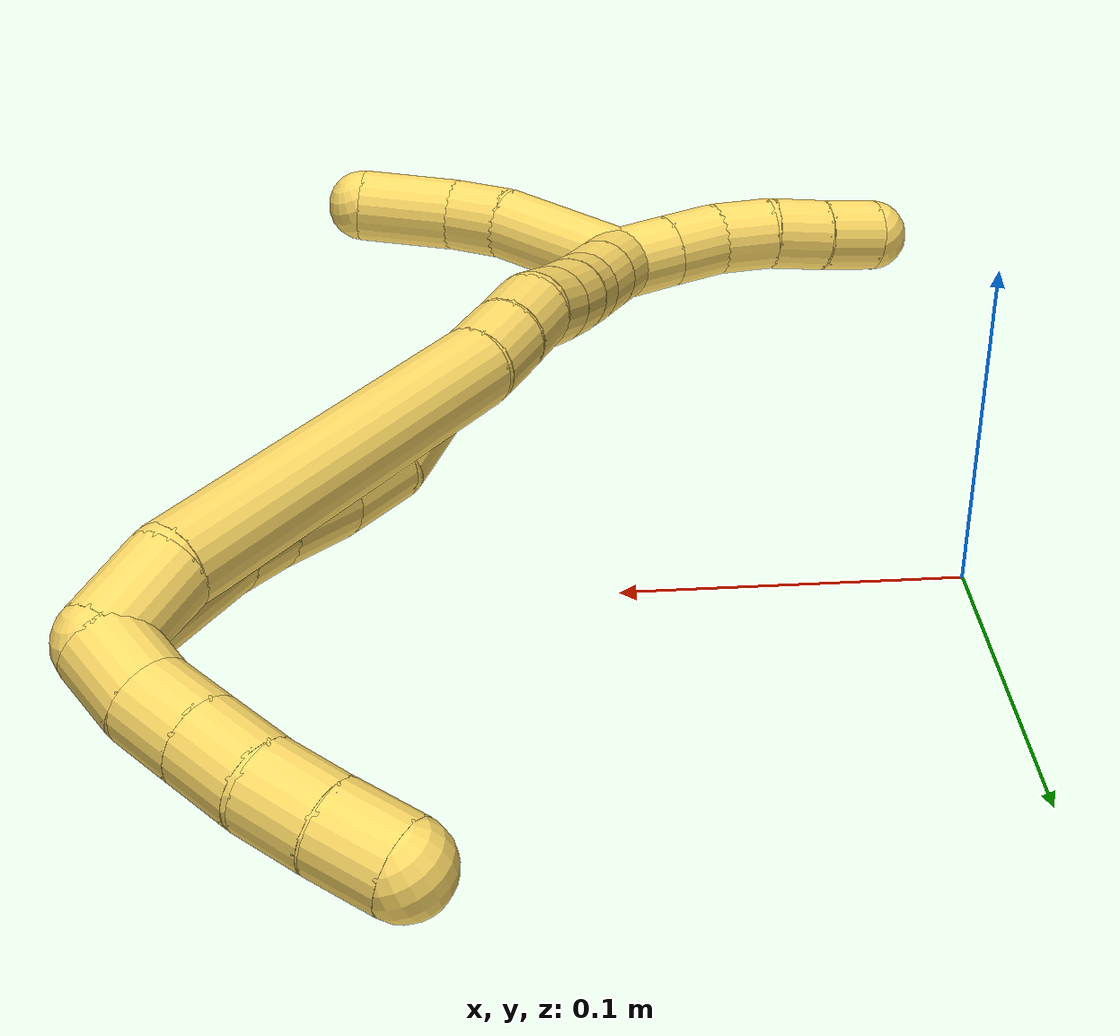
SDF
<sdf version="1.7">
 <world name="default">
  <model name="5">
   <static>0</static>
   <link name="5">
    <collision name="collision-cylinder-e_1_2_8">
     <pose>-0.020871 -0.013396 -0.00757 2.08517 -0.935506 -1.42706</pose>
     <geometry><cylinder><radius>0.0125</radius><length>0.051859</length></cylinder></geometry>
     <surface>
      <friction><ode><mu>1.16</mu><mu2>1.16</mu2><slip1>0</slip1><slip2>0</slip2></ode></friction>
      <contact><ode><kp>1e+06</kp><kd>1</kd><max_vel>0</max_vel><min_depth>0.001</min_depth></ode></contact>
     </surface>
    </collision>
    <visual name="visual-cylinder-e_1_2_8">
     <pose>-0.020871 -0.013396 -0.00757 2.08517 -0.935506 -1.42706</pose>
     <geometry><cylinder><radius>0.0125</radius><length>0.051859</length></cylinder></geometry>
     <material><ambient>1 0.858824 0.4 1</ambient></material>
    </visual>
    <collision name="collision-cylinder-e_2_8_9">
     <pose>-0.049772 -0.031785 -0.019059 2.23611 -0.901937 -1.56629</pose>
     <geometry><cylinder><radius>0.0125</radius><length>0.020472</length></cylinder></geometry>
     <surface>
      <friction><ode><mu>1.16</mu><mu2>1.16</mu2><slip1>0</slip1><slip2>0</slip2></ode></friction>
      <contact><ode><kp>1e+06</kp><kd>1</kd><max_vel>0</max_vel><min_depth>0.001</min_depth></ode></contact>
     </surface>
    </collision>
    <visual name="visual-cylinder-e_2_8_9">
     <pose>-0.049772 -0.031785 -0.019059 2.23611 -0.901937 -1.56629</pose>
     <geometry><cylinder><radius>0.0125</radius><length>0.020472</length></cylinder></geometry>
     <material><ambient>1 0.858824 0.4 1</ambient></material>
    </visual>
    <collision name="collision-cylinder-e_3_9_10">
     <pose>-0.069585 -0.043158 -0.029151 2.33992 -0.925093 -1.73272</pose>
     <geometry><cylinder><radius>0.0125</radius><length>0.029505</length></cylinder></geometry>
     <surface>
      <friction><ode><mu>1.16</mu><mu2>1.16</mu2><slip1>0</slip1><slip2>0</slip2></ode></friction>
      <contact><ode><kp>1e+06</kp><kd>1</kd><max_vel>0</max_vel><min_depth>0.001</min_depth></ode></contact>
     </surface>
    </collision>
    <visual name="visual-cylinder-e_3_9_10">
     <pose>-0.069585 -0.043158 -0.029151 2.33992 -0.925093 -1.73272</pose>
     <geometry><cylinder><radius>0.0125</radius><length>0.029505</length></cylinder></geometry>
     <material><ambient>1 0.858824 0.4 1</ambient></material>
    </visual>
    <collision name="collision-cylinder-e_4_10_11">
     <pose>-0.092248 -0.052778 -0.038281 2.30999 -1.18757 -1.98309</pose>
     <geometry><cylinder><radius>0.0125</radius><length>0.023463</length></cylinder></geometry>
     <surface>
      <friction><ode><mu>1.16</mu><mu2>1.16</mu2><slip1>0</slip1><slip2>0</slip2></ode></friction>
      <contact><ode><kp>1e+06</kp><kd>1</kd><max_vel>0</max_vel><min_depth>0.001</min_depth></ode></contact>
     </surface>
    </collision>
    <visual name="visual-cylinder-e_4_10_11">
     <pose>-0.092248 -0.052778 -0.038281 2.30999 -1.18757 -1.98309</pose>
     <geometry><cylinder><radius>0.0125</radius><length>0.023463</length></cylinder></geometry>
     <material><ambient>1 0.858824 0.4 1</ambient></material>
    </visual>
    <collision name="collision-cylinder-e_5_11_6">
     <pose>-0.114639 -0.060374 -0.040194 1.33598 -1.19982 -0.989765</pose>
     <geometry><cylinder><radius>0.0125</radius><length>0.0247</length></cylinder></geometry>
     <surface>
      <friction><ode><mu>1.16</mu><mu2>1.16</mu2><slip1>0</slip1><slip2>0</slip2></ode></friction>
      <contact><ode><kp>1e+06</kp><kd>1</kd><max_vel>0</max_vel><min_depth>0.001</min_depth></ode></contact>
     </surface>
    </collision>
    <visual name="visual-cylinder-e_5_11_6">
     <pose>-0.114639 -0.060374 -0.040194 1.33598 -1.19982 -0.989765</pose>
     <geometry><cylinder><radius>0.0125</radius><length>0.0247</length></cylinder></geometry>
     <material><ambient>1 0.858824 0.4 1</ambient></material>
    </visual>
    <collision name="collision-cylinder-e_1_2_12">
     <pose>0.000584 0.008449 -0.005318 -2.13257 0.058446 -0.105778</pose>
     <geometry><cylinder><radius>0.0125</radius><length>0.02</length></cylinder></geometry>
     <surface>
      <friction><ode><mu>1.16</mu><mu2>1.16</mu2><slip1>0</slip1><slip2>0</slip2></ode></friction>
      <contact><ode><kp>1e+06</kp><kd>1</kd><max_vel>0</max_vel><min_depth>0.001</min_depth></ode></contact>
     </surface>
    </collision>
    <visual name="visual-cylinder-e_1_2_12">
     <pose>0.000584 0.008449 -0.005318 -2.13257 0.058446 -0.105778</pose>
     <geometry><cylinder><radius>0.0125</radius><length>0.02</length></cylinder></geometry>
     <material><ambient>1 0.858824 0.4 1</ambient></material>
    </visual>
    <collision name="collision-cylinder-e_2_12_13">
     <pose>0.000145 0.026197 -0.014166 -1.93365 -0.102456 0.148348</pose>
     <geometry><cylinder><radius>0.0125</radius><length>0.02</length></cylinder></geometry>
     <surface>
      <friction><ode><mu>1.16</mu><mu2>1.16</mu2><slip1>0</slip1><slip2>0</slip2></ode></friction>
      <contact><ode><kp>1e+06</kp><kd>1</kd><max_vel>0</max_vel><min_depth>0.001</min_depth></ode></contact>
     </surface>
    </collision>
    <visual name="visual-cylinder-e_2_12_13">
     <pose>0.000145 0.026197 -0.014166 -1.93365 -0.102456 0.148348</pose>
     <geometry><cylinder><radius>0.0125</radius><length>0.02</length></cylinder></geometry>
     <material><ambient>1 0.858824 0.4 1</ambient></material>
    </visual>
    <collision name="collision-cylinder-e_3_13_14">
     <pose>-0.001953 0.044786 -0.021242 -1.93534 -0.10777 0.156308</pose>
     <geometry><cylinder><radius>0.0125</radius><length>0.02</length></cylinder></geometry>
     <surface>
      <friction><ode><mu>1.16</mu><mu2>1.16</mu2><slip1>0</slip1><slip2>0</slip2></ode></friction>
      <contact><ode><kp>1e+06</kp><kd>1</kd><max_vel>0</max_vel><min_depth>0.001</min_depth></ode></contact>
     </surface>
    </collision>
    <visual name="visual-cylinder-e_3_13_14">
     <pose>-0.001953 0.044786 -0.021242 -1.93534 -0.10777 0.156308</pose>
     <geometry><cylinder><radius>0.0125</radius><length>0.02</length></cylinder></geometry>
     <material><ambient>1 0.858824 0.4 1</ambient></material>
    </visual>
    <collision name="collision-cylinder-e_4_14_15">
     <pose>-0.005241 0.062843 -0.029053 -2.02366 -0.223064 0.354342</pose>
     <geometry><cylinder><radius>0.0125</radius><length>0.02</length></cylinder></geometry>
     <surface>
      <friction><ode><mu>1.16</mu><mu2>1.16</mu2><slip1>0</slip1><slip2>0</slip2></ode></friction>
      <contact><ode><kp>1e+06</kp><kd>1</kd><max_vel>0</max_vel><min_depth>0.001</min_depth></ode></contact>
     </surface>
    </collision>
    <visual name="visual-cylinder-e_4_14_15">
     <pose>-0.005241 0.062843 -0.029053 -2.02366 -0.223064 0.354342</pose>
     <geometry><cylinder><radius>0.0125</radius><length>0.02</length></cylinder></geometry>
     <material><ambient>1 0.858824 0.4 1</ambient></material>
    </visual>
    <collision name="collision-cylinder-e_5_15_5">
     <pose>-0.010138 0.080081 -0.037912 -2.06764 -0.2718 0.451554</pose>
     <geometry><cylinder><radius>0.0125</radius><length>0.02</length></cylinder></geometry>
     <surface>
      <friction><ode><mu>1.16</mu><mu2>1.16</mu2><slip1>0</slip1><slip2>0</slip2></ode></friction>
      <contact><ode><kp>1e+06</kp><kd>1</kd><max_vel>0</max_vel><min_depth>0.001</min_depth></ode></contact>
     </surface>
    </collision>
    <visual name="visual-cylinder-e_5_15_5">
     <pose>-0.010138 0.080081 -0.037912 -2.06764 -0.2718 0.451554</pose>
     <geometry><cylinder><radius>0.0125</radius><length>0.02</length></cylinder></geometry>
     <material><ambient>1 0.858824 0.4 1</ambient></material>
    </visual>
    <collision name="collision-cylinder-e_1_2_16">
     <pose>-0.012725 -0.004901 -0.000281 1.62807 -1.2026 -1.2566</pose>
     <geometry><cylinder><radius>0.0125</radius><length>0.027277</length></cylinder></geometry>
     <surface>
      <friction><ode><mu>1.16</mu><mu2>1.16</mu2><slip1>0</slip1><slip2>0</slip2></ode></friction>
      <contact><ode><kp>1e+06</kp><kd>1</kd><max_vel>0</max_vel><min_depth>0.001</min_depth></ode></contact>
     </surface>
    </collision>
    <visual name="visual-cylinder-e_1_2_16">
     <pose>-0.012725 -0.004901 -0.000281 1.62807 -1.2026 -1.2566</pose>
     <geometry><cylinder><radius>0.0125</radius><length>0.027277</length></cylinder></geometry>
     <material><ambient>1 0.858824 0.4 1</ambient></material>
    </visual>
    <collision name="collision-cylinder-e_2_16_17">
     <pose>-0.083391 -0.032808 -0.018057 2.22096 -1.1081 -1.79035</pose>
     <geometry><cylinder><radius>0.0125</radius><length>0.129502</length></cylinder></geometry>
     <surface>
      <friction><ode><mu>1.16</mu><mu2>1.16</mu2><slip1>0</slip1><slip2>0</slip2></ode></friction>
      <contact><ode><kp>1e+06</kp><kd>1</kd><max_vel>0</max_vel><min_depth>0.001</min_depth></ode></contact>
     </surface>
    </collision>
    <visual name="visual-cylinder-e_2_16_17">
     <pose>-0.083391 -0.032808 -0.018057 2.22096 -1.1081 -1.79035</pose>
     <geometry><cylinder><radius>0.0125</radius><length>0.129502</length></cylinder></geometry>
     <material><ambient>1 0.858824 0.4 1</ambient></material>
    </visual>
    <collision name="collision-cylinder-e_3_17_18">
     <pose>-0.149884 -0.060854 -0.037596 1.956 -1.00425 -1.36777</pose>
     <geometry><cylinder><radius>0.0125</radius><length>0.020267</length></cylinder></geometry>
     <surface>
      <friction><ode><mu>1.16</mu><mu2>1.16</mu2><slip1>0</slip1><slip2>0</slip2></ode></friction>
      <contact><ode><kp>1e+06</kp><kd>1</kd><max_vel>0</max_vel><min_depth>0.001</min_depth></ode></contact>
     </surface>
    </collision>
    <visual name="visual-cylinder-e_3_17_18">
     <pose>-0.149884 -0.060854 -0.037596 1.956 -1.00425 -1.36777</pose>
     <geometry><cylinder><radius>0.0125</radius><length>0.020267</length></cylinder></geometry>
     <material><ambient>1 0.858824 0.4 1</ambient></material>
    </visual>
    <collision name="collision-cylinder-e_4_18_19">
     <pose>-0.16659 -0.071756 -0.042095 1.96741 -0.908874 -1.2667</pose>
     <geometry><cylinder><radius>0.0125</radius><length>0.020679</length></cylinder></geometry>
     <surface>
      <friction><ode><mu>1.16</mu><mu2>1.16</mu2><slip1>0</slip1><slip2>0</slip2></ode></friction>
      <contact><ode><kp>1e+06</kp><kd>1</kd><max_vel>0</max_vel><min_depth>0.001</min_depth></ode></contact>
     </surface>
    </collision>
    <visual name="visual-cylinder-e_4_18_19">
     <pose>-0.16659 -0.071756 -0.042095 1.96741 -0.908874 -1.2667</pose>
     <geometry><cylinder><radius>0.0125</radius><length>0.020679</length></cylinder></geometry>
     <material><ambient>1 0.858824 0.4 1</ambient></material>
    </visual>
    <collision name="collision-cylinder-e_5_19_20">
     <pose>-0.181161 -0.084089 -0.049451 2.21905 -0.668746 -1.22009</pose>
     <geometry><cylinder><radius>0.0125</radius><length>0.020693</length></cylinder></geometry>
     <surface>
      <friction><ode><mu>1.16</mu><mu2>1.16</mu2><slip1>0</slip1><slip2>0</slip2></ode></friction>
      <contact><ode><kp>1e+06</kp><kd>1</kd><max_vel>0</max_vel><min_depth>0.001</min_depth></ode></contact>
     </surface>
    </collision>
    <visual name="visual-cylinder-e_5_19_20">
     <pose>-0.181161 -0.084089 -0.049451 2.21905 -0.668746 -1.22009</pose>
     <geometry><cylinder><radius>0.0125</radius><length>0.020693</length></cylinder></geometry>
     <material><ambient>1 0.858824 0.4 1</ambient></material>
    </visual>
    <collision name="collision-cylinder-e_6_20_21">
     <pose>-0.194169 -0.097164 -0.05885 2.16861 -0.689896 -1.1935</pose>
     <geometry><cylinder><radius>0.0125</radius><length>0.020717</length></cylinder></geometry>
     <surface>
      <friction><ode><mu>1.16</mu><mu2>1.16</mu2><slip1>0</slip1><slip2>0</slip2></ode></friction>
      <contact><ode><kp>1e+06</kp><kd>1</kd><max_vel>0</max_vel><min_depth>0.001</min_depth></ode></contact>
     </surface>
    </collision>
    <visual name="visual-cylinder-e_6_20_21">
     <pose>-0.194169 -0.097164 -0.05885 2.16861 -0.689896 -1.1935</pose>
     <geometry><cylinder><radius>0.0125</radius><length>0.020717</length></cylinder></geometry>
     <material><ambient>1 0.858824 0.4 1</ambient></material>
    </visual>
    <collision name="collision-cylinder-e_7_21_22">
     <pose>-0.206821 -0.110893 -0.067718 2.12105 -0.627236 -1.05032</pose>
     <geometry><cylinder><radius>0.0125</radius><length>0.020648</length></cylinder></geometry>
     <surface>
      <friction><ode><mu>1.16</mu><mu2>1.16</mu2><slip1>0</slip1><slip2>0</slip2></ode></friction>
      <contact><ode><kp>1e+06</kp><kd>1</kd><max_vel>0</max_vel><min_depth>0.001</min_depth></ode></contact>
     </surface>
    </collision>
    <visual name="visual-cylinder-e_7_21_22">
     <pose>-0.206821 -0.110893 -0.067718 2.12105 -0.627236 -1.05032</pose>
     <geometry><cylinder><radius>0.0125</radius><length>0.020648</length></cylinder></geometry>
     <material><ambient>1 0.858824 0.4 1</ambient></material>
    </visual>
    <collision name="collision-cylinder-e_8_22_23">
     <pose>-0.219998 -0.124087 -0.075726 2.11072 -0.788403 -1.26671</pose>
     <geometry><cylinder><radius>0.0125</radius><length>0.020072</length></cylinder></geometry>
     <surface>
      <friction><ode><mu>1.16</mu><mu2>1.16</mu2><slip1>0</slip1><slip2>0</slip2></ode></friction>
      <contact><ode><kp>1e+06</kp><kd>1</kd><max_vel>0</max_vel><min_depth>0.001</min_depth></ode></contact>
     </surface>
    </collision>
    <visual name="visual-cylinder-e_8_22_23">
     <pose>-0.219998 -0.124087 -0.075726 2.11072 -0.788403 -1.26671</pose>
     <geometry><cylinder><radius>0.0125</radius><length>0.020072</length></cylinder></geometry>
     <material><ambient>1 0.858824 0.4 1</ambient></material>
    </visual>
    <collision name="collision-cylinder-e_9_23_1">
     <pose>-0.234319 -0.136146 -0.083061 2.12392 -0.79679 -1.29279</pose>
     <geometry><cylinder><radius>0.0125</radius><length>0.020145</length></cylinder></geometry>
     <surface>
      <friction><ode><mu>1.16</mu><mu2>1.16</mu2><slip1>0</slip1><slip2>0</slip2></ode></friction>
      <contact><ode><kp>1e+06</kp><kd>1</kd><max_vel>0</max_vel><min_depth>0.001</min_depth></ode></contact>
     </surface>
    </collision>
    <visual name="visual-cylinder-e_9_23_1">
     <pose>-0.234319 -0.136146 -0.083061 2.12392 -0.79679 -1.29279</pose>
     <geometry><cylinder><radius>0.0125</radius><length>0.020145</length></cylinder></geometry>
     <material><ambient>1 0.858824 0.4 1</ambient></material>
    </visual>
    <collision name="collision-cylinder-e_1_1_24">
     <pose>-0.250816 -0.141065 -0.090289 -2.84667 -1.19301 2.71087</pose>
     <geometry><cylinder><radius>0.0125</radius><length>0.02</length></cylinder></geometry>
     <surface>
      <friction><ode><mu>1.16</mu><mu2>1.16</mu2><slip1>0</slip1><slip2>0</slip2></ode></friction>
      <contact><ode><kp>1e+06</kp><kd>1</kd><max_vel>0</max_vel><min_depth>0.001</min_depth></ode></contact>
     </surface>
    </collision>
    <visual name="visual-cylinder-e_1_1_24">
     <pose>-0.250816 -0.141065 -0.090289 -2.84667 -1.19301 2.71087</pose>
     <geometry><cylinder><radius>0.0125</radius><length>0.02</length></cylinder></geometry>
     <material><ambient>1 0.858824 0.4 1</ambient></material>
    </visual>
    <collision name="collision-cylinder-e_2_24_25">
     <pose>-0.269373 -0.138822 -0.097402 -2.82586 -1.18428 2.67683</pose>
     <geometry><cylinder><radius>0.0125</radius><length>0.02</length></cylinder></geometry>
     <surface>
      <friction><ode><mu>1.16</mu><mu2>1.16</mu2><slip1>0</slip1><slip2>0</slip2></ode></friction>
      <contact><ode><kp>1e+06</kp><kd>1</kd><max_vel>0</max_vel><min_depth>0.001</min_depth></ode></contact>
     </surface>
    </collision>
    <visual name="visual-cylinder-e_2_24_25">
     <pose>-0.269373 -0.138822 -0.097402 -2.82586 -1.18428 2.67683</pose>
     <geometry><cylinder><radius>0.0125</radius><length>0.02</length></cylinder></geometry>
     <material><ambient>1 0.858824 0.4 1</ambient></material>
    </visual>
    <collision name="collision-cylinder-e_3_25_26">
     <pose>-0.287053 -0.13394 -0.104906 -2.38347 -1.00047 1.8821</pose>
     <geometry><cylinder><radius>0.0125</radius><length>0.02</length></cylinder></geometry>
     <surface>
      <friction><ode><mu>1.16</mu><mu2>1.16</mu2><slip1>0</slip1><slip2>0</slip2></ode></friction>
      <contact><ode><kp>1e+06</kp><kd>1</kd><max_vel>0</max_vel><min_depth>0.001</min_depth></ode></contact>
     </surface>
    </collision>
    <visual name="visual-cylinder-e_3_25_26">
     <pose>-0.287053 -0.13394 -0.104906 -2.38347 -1.00047 1.8821</pose>
     <geometry><cylinder><radius>0.0125</radius><length>0.02</length></cylinder></geometry>
     <material><ambient>1 0.858824 0.4 1</ambient></material>
    </visual>
    <collision name="collision-cylinder-e_4_26_27">
     <pose>-0.303351 -0.127063 -0.114107 -2.60165 -0.907631 2.10949</pose>
     <geometry><cylinder><radius>0.0125</radius><length>0.02</length></cylinder></geometry>
     <surface>
      <friction><ode><mu>1.16</mu><mu2>1.16</mu2><slip1>0</slip1><slip2>0</slip2></ode></friction>
      <contact><ode><kp>1e+06</kp><kd>1</kd><max_vel>0</max_vel><min_depth>0.001</min_depth></ode></contact>
     </surface>
    </collision>
    <visual name="visual-cylinder-e_4_26_27">
     <pose>-0.303351 -0.127063 -0.114107 -2.60165 -0.907631 2.10949</pose>
     <geometry><cylinder><radius>0.0125</radius><length>0.02</length></cylinder></geometry>
     <material><ambient>1 0.858824 0.4 1</ambient></material>
    </visual>
    <collision name="collision-cylinder-e_5_27_4">
     <pose>-0.319374 -0.121222 -0.124539 -2.66257 -0.951419 2.2563</pose>
     <geometry><cylinder><radius>0.0125</radius><length>0.02</length></cylinder></geometry>
     <surface>
      <friction><ode><mu>1.16</mu><mu2>1.16</mu2><slip1>0</slip1><slip2>0</slip2></ode></friction>
      <contact><ode><kp>1e+06</kp><kd>1</kd><max_vel>0</max_vel><min_depth>0.001</min_depth></ode></contact>
     </surface>
    </collision>
    <visual name="visual-cylinder-e_5_27_4">
     <pose>-0.319374 -0.121222 -0.124539 -2.66257 -0.951419 2.2563</pose>
     <geometry><cylinder><radius>0.0125</radius><length>0.02</length></cylinder></geometry>
     <material><ambient>1 0.858824 0.4 1</ambient></material>
    </visual>
    <collision name="collision-cylinder-e_1_1_28">
     <pose>-0.234807 -0.162007 -0.077056 1.11647 0.294803 0.184918</pose>
     <geometry><cylinder><radius>0.0125</radius><length>0.04622</length></cylinder></geometry>
     <surface>
      <friction><ode><mu>1.16</mu><mu2>1.16</mu2><slip1>0</slip1><slip2>0</slip2></ode></friction>
      <contact><ode><kp>1e+06</kp><kd>1</kd><max_vel>0</max_vel><min_depth>0.001</min_depth></ode></contact>
     </surface>
    </collision>
    <visual name="visual-cylinder-e_1_1_28">
     <pose>-0.234807 -0.162007 -0.077056 1.11647 0.294803 0.184918</pose>
     <geometry><cylinder><radius>0.0125</radius><length>0.04622</length></cylinder></geometry>
     <material><ambient>1 0.858824 0.4 1</ambient></material>
    </visual>
    <collision name="collision-cylinder-e_2_28_29">
     <pose>-0.223725 -0.190397 -0.063921 1.18813 0.443864 0.302505</pose>
     <geometry><cylinder><radius>0.0125</radius><length>0.020342</length></cylinder></geometry>
     <surface>
      <friction><ode><mu>1.16</mu><mu2>1.16</mu2><slip1>0</slip1><slip2>0</slip2></ode></friction>
      <contact><ode><kp>1e+06</kp><kd>1</kd><max_vel>0</max_vel><min_depth>0.001</min_depth></ode></contact>
     </surface>
    </collision>
    <visual name="visual-cylinder-e_2_28_29">
     <pose>-0.223725 -0.190397 -0.063921 1.18813 0.443864 0.302505</pose>
     <geometry><cylinder><radius>0.0125</radius><length>0.020342</length></cylinder></geometry>
     <material><ambient>1 0.858824 0.4 1</ambient></material>
    </visual>
    <collision name="collision-cylinder-e_3_29_3">
     <pose>-0.208847 -0.209617 -0.053101 0.966301 0.679741 0.366834</pose>
     <geometry><cylinder><radius>0.0125</radius><length>0.033439</length></cylinder></geometry>
     <surface>
      <friction><ode><mu>1.16</mu><mu2>1.16</mu2><slip1>0</slip1><slip2>0</slip2></ode></friction>
      <contact><ode><kp>1e+06</kp><kd>1</kd><max_vel>0</max_vel><min_depth>0.001</min_depth></ode></contact>
     </surface>
    </collision>
    <visual name="visual-cylinder-e_3_29_3">
     <pose>-0.208847 -0.209617 -0.053101 0.966301 0.679741 0.366834</pose>
     <geometry><cylinder><radius>0.0125</radius><length>0.033439</length></cylinder></geometry>
     <material><ambient>1 0.858824 0.4 1</ambient></material>
    </visual>
    <collision name="collision-sphere-3">
     <pose>-0.198338 -0.220316 -0.045711 0 -0 0</pose>
     <geometry><sphere><radius>0.0125</radius></sphere></geometry>
     <surface>
      <friction><ode><mu>1.16</mu><mu2>1.16</mu2><slip1>0</slip1><slip2>0</slip2></ode></friction>
      <contact><ode><kp>1e+06</kp><kd>1</kd><max_vel>0</max_vel><min_depth>0.001</min_depth></ode></contact>
     </surface>
    </collision>
    <visual name="visual-sphere-3">
     <pose>-0.198338 -0.220316 -0.045711 0 -0 0</pose>
     <geometry><sphere><radius>0.0125</radius></sphere></geometry>
     <material><ambient>1 0.858824 0.4 1</ambient></material>
    </visual>
    <collision name="collision-sphere-29">
     <pose>-0.219357 -0.198918 -0.060492 0 -0 0</pose>
     <geometry><sphere><radius>0.0125</radius></sphere></geometry>
     <surface>
      <friction><ode><mu>1.16</mu><mu2>1.16</mu2><slip1>0</slip1><slip2>0</slip2></ode></friction>
      <contact><ode><kp>1e+06</kp><kd>1</kd><max_vel>0</max_vel><min_depth>0.001</min_depth></ode></contact>
     </surface>
    </collision>
    <visual name="visual-sphere-29">
     <pose>-0.219357 -0.198918 -0.060492 0 -0 0</pose>
     <geometry><sphere><radius>0.0125</radius></sphere></geometry>
     <material><ambient>1 0.858824 0.4 1</ambient></material>
    </visual>
    <collision name="collision-sphere-28">
     <pose>-0.228092 -0.181876 -0.067351 0 -0 0</pose>
     <geometry><sphere><radius>0.0125</radius></sphere></geometry>
     <surface>
      <friction><ode><mu>1.16</mu><mu2>1.16</mu2><slip1>0</slip1><slip2>0</slip2></ode></friction>
      <contact><ode><kp>1e+06</kp><kd>1</kd><max_vel>0</max_vel><min_depth>0.001</min_depth></ode></contact>
     </surface>
    </collision>
    <visual name="visual-sphere-28">
     <pose>-0.228092 -0.181876 -0.067351 0 -0 0</pose>
     <geometry><sphere><radius>0.0125</radius></sphere></geometry>
     <material><ambient>1 0.858824 0.4 1</ambient></material>
    </visual>
    <collision name="collision-sphere-4">
     <pose>-0.327516 -0.118546 -0.129691 0 -0 0</pose>
     <geometry><sphere><radius>0.0125</radius></sphere></geometry>
     <surface>
      <friction><ode><mu>1.16</mu><mu2>1.16</mu2><slip1>0</slip1><slip2>0</slip2></ode></friction>
      <contact><ode><kp>1e+06</kp><kd>1</kd><max_vel>0</max_vel><min_depth>0.001</min_depth></ode></contact>
     </surface>
    </collision>
    <visual name="visual-sphere-4">
     <pose>-0.327516 -0.118546 -0.129691 0 -0 0</pose>
     <geometry><sphere><radius>0.0125</radius></sphere></geometry>
     <material><ambient>1 0.858824 0.4 1</ambient></material>
    </visual>
    <collision name="collision-sphere-27">
     <pose>-0.311231 -0.123898 -0.119387 0 -0 0</pose>
     <geometry><sphere><radius>0.0125</radius></sphere></geometry>
     <surface>
      <friction><ode><mu>1.16</mu><mu2>1.16</mu2><slip1>0</slip1><slip2>0</slip2></ode></friction>
      <contact><ode><kp>1e+06</kp><kd>1</kd><max_vel>0</max_vel><min_depth>0.001</min_depth></ode></contact>
     </surface>
    </collision>
    <visual name="visual-sphere-27">
     <pose>-0.311231 -0.123898 -0.119387 0 -0 0</pose>
     <geometry><sphere><radius>0.0125</radius></sphere></geometry>
     <material><ambient>1 0.858824 0.4 1</ambient></material>
    </visual>
    <collision name="collision-sphere-26">
     <pose>-0.29547 -0.130227 -0.108826 0 -0 0</pose>
     <geometry><sphere><radius>0.0125</radius></sphere></geometry>
     <surface>
      <friction><ode><mu>1.16</mu><mu2>1.16</mu2><slip1>0</slip1><slip2>0</slip2></ode></friction>
      <contact><ode><kp>1e+06</kp><kd>1</kd><max_vel>0</max_vel><min_depth>0.001</min_depth></ode></contact>
     </surface>
    </collision>
    <visual name="visual-sphere-26">
     <pose>-0.29547 -0.130227 -0.108826 0 -0 0</pose>
     <geometry><sphere><radius>0.0125</radius></sphere></geometry>
     <material><ambient>1 0.858824 0.4 1</ambient></material>
    </visual>
    <collision name="collision-sphere-25">
     <pose>-0.278636 -0.137652 -0.100985 0 -0 0</pose>
     <geometry><sphere><radius>0.0125</radius></sphere></geometry>
     <surface>
      <friction><ode><mu>1.16</mu><mu2>1.16</mu2><slip1>0</slip1><slip2>0</slip2></ode></friction>
      <contact><ode><kp>1e+06</kp><kd>1</kd><max_vel>0</max_vel><min_depth>0.001</min_depth></ode></contact>
     </surface>
    </collision>
    <visual name="visual-sphere-25">
     <pose>-0.278636 -0.137652 -0.100985 0 -0 0</pose>
     <geometry><sphere><radius>0.0125</radius></sphere></geometry>
     <material><ambient>1 0.858824 0.4 1</ambient></material>
    </visual>
    <collision name="collision-sphere-24">
     <pose>-0.260111 -0.139993 -0.093819 0 -0 0</pose>
     <geometry><sphere><radius>0.0125</radius></sphere></geometry>
     <surface>
      <friction><ode><mu>1.16</mu><mu2>1.16</mu2><slip1>0</slip1><slip2>0</slip2></ode></friction>
      <contact><ode><kp>1e+06</kp><kd>1</kd><max_vel>0</max_vel><min_depth>0.001</min_depth></ode></contact>
     </surface>
    </collision>
    <visual name="visual-sphere-24">
     <pose>-0.260111 -0.139993 -0.093819 0 -0 0</pose>
     <geometry><sphere><radius>0.0125</radius></sphere></geometry>
     <material><ambient>1 0.858824 0.4 1</ambient></material>
    </visual>
    <collision name="collision-sphere-1">
     <pose>-0.241521 -0.142137 -0.08676 0 -0 0</pose>
     <geometry><sphere><radius>0.0125</radius></sphere></geometry>
     <surface>
      <friction><ode><mu>1.16</mu><mu2>1.16</mu2><slip1>0</slip1><slip2>0</slip2></ode></friction>
      <contact><ode><kp>1e+06</kp><kd>1</kd><max_vel>0</max_vel><min_depth>0.001</min_depth></ode></contact>
     </surface>
    </collision>
    <visual name="visual-sphere-1">
     <pose>-0.241521 -0.142137 -0.08676 0 -0 0</pose>
     <geometry><sphere><radius>0.0125</radius></sphere></geometry>
     <material><ambient>1 0.858824 0.4 1</ambient></material>
    </visual>
    <collision name="collision-sphere-23">
     <pose>-0.227116 -0.130156 -0.079363 0 -0 0</pose>
     <geometry><sphere><radius>0.0125</radius></sphere></geometry>
     <surface>
      <friction><ode><mu>1.16</mu><mu2>1.16</mu2><slip1>0</slip1><slip2>0</slip2></ode></friction>
      <contact><ode><kp>1e+06</kp><kd>1</kd><max_vel>0</max_vel><min_depth>0.001</min_depth></ode></contact>
     </surface>
    </collision>
    <visual name="visual-sphere-23">
     <pose>-0.227116 -0.130156 -0.079363 0 -0 0</pose>
     <geometry><sphere><radius>0.0125</radius></sphere></geometry>
     <material><ambient>1 0.858824 0.4 1</ambient></material>
    </visual>
    <collision name="collision-sphere-22">
     <pose>-0.21288 -0.118018 -0.072088 0 -0 0</pose>
     <geometry><sphere><radius>0.0125</radius></sphere></geometry>
     <surface>
      <friction><ode><mu>1.16</mu><mu2>1.16</mu2><slip1>0</slip1><slip2>0</slip2></ode></friction>
      <contact><ode><kp>1e+06</kp><kd>1</kd><max_vel>0</max_vel><min_depth>0.001</min_depth></ode></contact>
     </surface>
    </collision>
    <visual name="visual-sphere-22">
     <pose>-0.21288 -0.118018 -0.072088 0 -0 0</pose>
     <geometry><sphere><radius>0.0125</radius></sphere></geometry>
     <material><ambient>1 0.858824 0.4 1</ambient></material>
    </visual>
    <collision name="collision-sphere-21">
     <pose>-0.200762 -0.103768 -0.063347 0 -0 0</pose>
     <geometry><sphere><radius>0.0125</radius></sphere></geometry>
     <surface>
      <friction><ode><mu>1.16</mu><mu2>1.16</mu2><slip1>0</slip1><slip2>0</slip2></ode></friction>
      <contact><ode><kp>1e+06</kp><kd>1</kd><max_vel>0</max_vel><min_depth>0.001</min_depth></ode></contact>
     </surface>
    </collision>
    <visual name="visual-sphere-21">
     <pose>-0.200762 -0.103768 -0.063347 0 -0 0</pose>
     <geometry><sphere><radius>0.0125</radius></sphere></geometry>
     <material><ambient>1 0.858824 0.4 1</ambient></material>
    </visual>
    <collision name="collision-sphere-6">
     <pose>-0.126149 -0.064729 -0.039153 0 -0 0</pose>
     <geometry><sphere><radius>0.0125</radius></sphere></geometry>
     <surface>
      <friction><ode><mu>1.16</mu><mu2>1.16</mu2><slip1>0</slip1><slip2>0</slip2></ode></friction>
      <contact><ode><kp>1e+06</kp><kd>1</kd><max_vel>0</max_vel><min_depth>0.001</min_depth></ode></contact>
     </surface>
    </collision>
    <visual name="visual-sphere-6">
     <pose>-0.126149 -0.064729 -0.039153 0 -0 0</pose>
     <geometry><sphere><radius>0.0125</radius></sphere></geometry>
     <material><ambient>1 0.858824 0.4 1</ambient></material>
    </visual>
    <collision name="collision-sphere-11">
     <pose>-0.103129 -0.05602 -0.041236 0 -0 0</pose>
     <geometry><sphere><radius>0.0125</radius></sphere></geometry>
     <surface>
      <friction><ode><mu>1.16</mu><mu2>1.16</mu2><slip1>0</slip1><slip2>0</slip2></ode></friction>
      <contact><ode><kp>1e+06</kp><kd>1</kd><max_vel>0</max_vel><min_depth>0.001</min_depth></ode></contact>
     </surface>
    </collision>
    <visual name="visual-sphere-11">
     <pose>-0.103129 -0.05602 -0.041236 0 -0 0</pose>
     <geometry><sphere><radius>0.0125</radius></sphere></geometry>
     <material><ambient>1 0.858824 0.4 1</ambient></material>
    </visual>
    <collision name="collision-sphere-10">
     <pose>-0.081368 -0.049536 -0.035326 0 -0 0</pose>
     <geometry><sphere><radius>0.0125</radius></sphere></geometry>
     <surface>
      <friction><ode><mu>1.16</mu><mu2>1.16</mu2><slip1>0</slip1><slip2>0</slip2></ode></friction>
      <contact><ode><kp>1e+06</kp><kd>1</kd><max_vel>0</max_vel><min_depth>0.001</min_depth></ode></contact>
     </surface>
    </collision>
    <visual name="visual-sphere-10">
     <pose>-0.081368 -0.049536 -0.035326 0 -0 0</pose>
     <geometry><sphere><radius>0.0125</radius></sphere></geometry>
     <material><ambient>1 0.858824 0.4 1</ambient></material>
    </visual>
    <collision name="collision-sphere-9">
     <pose>-0.057803 -0.036779 -0.022977 0 -0 0</pose>
     <geometry><sphere><radius>0.0125</radius></sphere></geometry>
     <surface>
      <friction><ode><mu>1.16</mu><mu2>1.16</mu2><slip1>0</slip1><slip2>0</slip2></ode></friction>
      <contact><ode><kp>1e+06</kp><kd>1</kd><max_vel>0</max_vel><min_depth>0.001</min_depth></ode></contact>
     </surface>
    </collision>
    <visual name="visual-sphere-9">
     <pose>-0.057803 -0.036779 -0.022977 0 -0 0</pose>
     <geometry><sphere><radius>0.0125</radius></sphere></geometry>
     <material><ambient>1 0.858824 0.4 1</ambient></material>
    </visual>
    <collision name="collision-sphere-2">
     <geometry><sphere><radius>0.0125</radius></sphere></geometry>
     <surface>
      <friction><ode><mu>1.16</mu><mu2>1.16</mu2><slip1>0</slip1><slip2>0</slip2></ode></friction>
      <contact><ode><kp>1e+06</kp><kd>1</kd><max_vel>0</max_vel><min_depth>0.001</min_depth></ode></contact>
     </surface>
    </collision>
    <visual name="visual-sphere-2">
     <geometry><sphere><radius>0.0125</radius></sphere></geometry>
     <material><ambient>1 0.858824 0.4 1</ambient></material>
    </visual>
    <collision name="collision-sphere-19">
     <pose>-0.174746 -0.077618 -0.04455 0 -0 0</pose>
     <geometry><sphere><radius>0.0125</radius></sphere></geometry>
     <surface>
      <friction><ode><mu>1.16</mu><mu2>1.16</mu2><slip1>0</slip1><slip2>0</slip2></ode></friction>
      <contact><ode><kp>1e+06</kp><kd>1</kd><max_vel>0</max_vel><min_depth>0.001</min_depth></ode></contact>
     </surface>
    </collision>
    <visual name="visual-sphere-19">
     <pose>-0.174746 -0.077618 -0.04455 0 -0 0</pose>
     <geometry><sphere><radius>0.0125</radius></sphere></geometry>
     <material><ambient>1 0.858824 0.4 1</ambient></material>
    </visual>
    <collision name="collision-sphere-8">
     <pose>-0.041742 -0.026792 -0.01514 0 -0 0</pose>
     <geometry><sphere><radius>0.0125</radius></sphere></geometry>
     <surface>
      <friction><ode><mu>1.16</mu><mu2>1.16</mu2><slip1>0</slip1><slip2>0</slip2></ode></friction>
      <contact><ode><kp>1e+06</kp><kd>1</kd><max_vel>0</max_vel><min_depth>0.001</min_depth></ode></contact>
     </surface>
    </collision>
    <visual name="visual-sphere-8">
     <pose>-0.041742 -0.026792 -0.01514 0 -0 0</pose>
     <geometry><sphere><radius>0.0125</radius></sphere></geometry>
     <material><ambient>1 0.858824 0.4 1</ambient></material>
    </visual>
    <collision name="collision-sphere-12">
     <pose>0.001168 0.016897 -0.010636 0 -0 0</pose>
     <geometry><sphere><radius>0.0125</radius></sphere></geometry>
     <surface>
      <friction><ode><mu>1.16</mu><mu2>1.16</mu2><slip1>0</slip1><slip2>0</slip2></ode></friction>
      <contact><ode><kp>1e+06</kp><kd>1</kd><max_vel>0</max_vel><min_depth>0.001</min_depth></ode></contact>
     </surface>
    </collision>
    <visual name="visual-sphere-12">
     <pose>0.001168 0.016897 -0.010636 0 -0 0</pose>
     <geometry><sphere><radius>0.0125</radius></sphere></geometry>
     <material><ambient>1 0.858824 0.4 1</ambient></material>
    </visual>
    <collision name="collision-sphere-13">
     <pose>-0.000877 0.035497 -0.017697 0 -0 0</pose>
     <geometry><sphere><radius>0.0125</radius></sphere></geometry>
     <surface>
      <friction><ode><mu>1.16</mu><mu2>1.16</mu2><slip1>0</slip1><slip2>0</slip2></ode></friction>
      <contact><ode><kp>1e+06</kp><kd>1</kd><max_vel>0</max_vel><min_depth>0.001</min_depth></ode></contact>
     </surface>
    </collision>
    <visual name="visual-sphere-13">
     <pose>-0.000877 0.035497 -0.017697 0 -0 0</pose>
     <geometry><sphere><radius>0.0125</radius></sphere></geometry>
     <material><ambient>1 0.858824 0.4 1</ambient></material>
    </visual>
    <collision name="collision-sphere-14">
     <pose>-0.003029 0.054074 -0.024786 0 -0 0</pose>
     <geometry><sphere><radius>0.0125</radius></sphere></geometry>
     <surface>
      <friction><ode><mu>1.16</mu><mu2>1.16</mu2><slip1>0</slip1><slip2>0</slip2></ode></friction>
      <contact><ode><kp>1e+06</kp><kd>1</kd><max_vel>0</max_vel><min_depth>0.001</min_depth></ode></contact>
     </surface>
    </collision>
    <visual name="visual-sphere-14">
     <pose>-0.003029 0.054074 -0.024786 0 -0 0</pose>
     <geometry><sphere><radius>0.0125</radius></sphere></geometry>
     <material><ambient>1 0.858824 0.4 1</ambient></material>
    </visual>
    <collision name="collision-sphere-15">
     <pose>-0.007453 0.071613 -0.03332 0 -0 0</pose>
     <geometry><sphere><radius>0.0125</radius></sphere></geometry>
     <surface>
      <friction><ode><mu>1.16</mu><mu2>1.16</mu2><slip1>0</slip1><slip2>0</slip2></ode></friction>
      <contact><ode><kp>1e+06</kp><kd>1</kd><max_vel>0</max_vel><min_depth>0.001</min_depth></ode></contact>
     </surface>
    </collision>
    <visual name="visual-sphere-15">
     <pose>-0.007453 0.071613 -0.03332 0 -0 0</pose>
     <geometry><sphere><radius>0.0125</radius></sphere></geometry>
     <material><ambient>1 0.858824 0.4 1</ambient></material>
    </visual>
    <collision name="collision-sphere-5">
     <pose>-0.012822 0.088549 -0.042504 0 -0 0</pose>
     <geometry><sphere><radius>0.0125</radius></sphere></geometry>
     <surface>
      <friction><ode><mu>1.16</mu><mu2>1.16</mu2><slip1>0</slip1><slip2>0</slip2></ode></friction>
      <contact><ode><kp>1e+06</kp><kd>1</kd><max_vel>0</max_vel><min_depth>0.001</min_depth></ode></contact>
     </surface>
    </collision>
    <visual name="visual-sphere-5">
     <pose>-0.012822 0.088549 -0.042504 0 -0 0</pose>
     <geometry><sphere><radius>0.0125</radius></sphere></geometry>
     <material><ambient>1 0.858824 0.4 1</ambient></material>
    </visual>
    <collision name="collision-sphere-16">
     <pose>-0.025449 -0.009802 -0.000562 0 -0 0</pose>
     <geometry><sphere><radius>0.0125</radius></sphere></geometry>
     <surface>
      <friction><ode><mu>1.16</mu><mu2>1.16</mu2><slip1>0</slip1><slip2>0</slip2></ode></friction>
      <contact><ode><kp>1e+06</kp><kd>1</kd><max_vel>0</max_vel><min_depth>0.001</min_depth></ode></contact>
     </surface>
    </collision>
    <visual name="visual-sphere-16">
     <pose>-0.025449 -0.009802 -0.000562 0 -0 0</pose>
     <geometry><sphere><radius>0.0125</radius></sphere></geometry>
     <material><ambient>1 0.858824 0.4 1</ambient></material>
    </visual>
    <collision name="collision-sphere-17">
     <pose>-0.141334 -0.055814 -0.035553 0 -0 0</pose>
     <geometry><sphere><radius>0.0125</radius></sphere></geometry>
     <surface>
      <friction><ode><mu>1.16</mu><mu2>1.16</mu2><slip1>0</slip1><slip2>0</slip2></ode></friction>
      <contact><ode><kp>1e+06</kp><kd>1</kd><max_vel>0</max_vel><min_depth>0.001</min_depth></ode></contact>
     </surface>
    </collision>
    <visual name="visual-sphere-17">
     <pose>-0.141334 -0.055814 -0.035553 0 -0 0</pose>
     <geometry><sphere><radius>0.0125</radius></sphere></geometry>
     <material><ambient>1 0.858824 0.4 1</ambient></material>
    </visual>
    <collision name="collision-sphere-18">
     <pose>-0.158434 -0.065894 -0.03964 0 -0 0</pose>
     <geometry><sphere><radius>0.0125</radius></sphere></geometry>
     <surface>
      <friction><ode><mu>1.16</mu><mu2>1.16</mu2><slip1>0</slip1><slip2>0</slip2></ode></friction>
      <contact><ode><kp>1e+06</kp><kd>1</kd><max_vel>0</max_vel><min_depth>0.001</min_depth></ode></contact>
     </surface>
    </collision>
    <visual name="visual-sphere-18">
     <pose>-0.158434 -0.065894 -0.03964 0 -0 0</pose>
     <geometry><sphere><radius>0.0125</radius></sphere></geometry>
     <material><ambient>1 0.858824 0.4 1</ambient></material>
    </visual>
    <collision name="collision-sphere-20">
     <pose>-0.187576 -0.09056 -0.054353 0 -0 0</pose>
     <geometry><sphere><radius>0.0125</radius></sphere></geometry>
     <surface>
      <friction><ode><mu>1.16</mu><mu2>1.16</mu2><slip1>0</slip1><slip2>0</slip2></ode></friction>
      <contact><ode><kp>1e+06</kp><kd>1</kd><max_vel>0</max_vel><min_depth>0.001</min_depth></ode></contact>
     </surface>
    </collision>
    <visual name="visual-sphere-20">
     <pose>-0.187576 -0.09056 -0.054353 0 -0 0</pose>
     <geometry><sphere><radius>0.0125</radius></sphere></geometry>
     <material><ambient>1 0.858824 0.4 1</ambient></material>
    </visual>
    <inertial>
     <pose>-0.132368 -0.067852 -0.045017 0 -0 0</pose>
     <mass>0.75</mass>
     <inertia>
      <ixx>-0.000123</ixx>
      <ixy>0</ixy>
      <ixz>0</ixz>
      <iyy>8.1e-05</iyy>
      <iyz>0</iyz>
      <izz>0.000271</izz>
     </inertia>
    </inertial>
   </link>
   <pose>0.233703 0.079691 0.050048 0.242345 0.336301 0.617901</pose>
  </model>
 </world>
</sdf>
